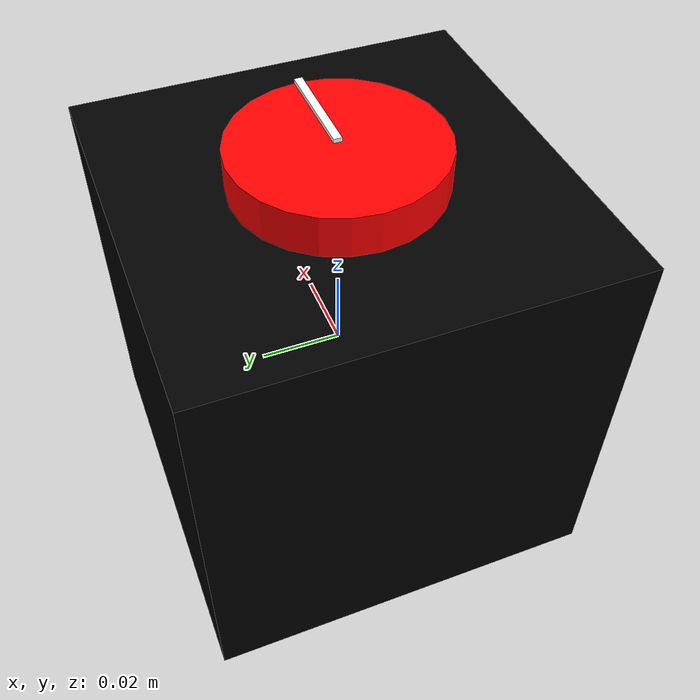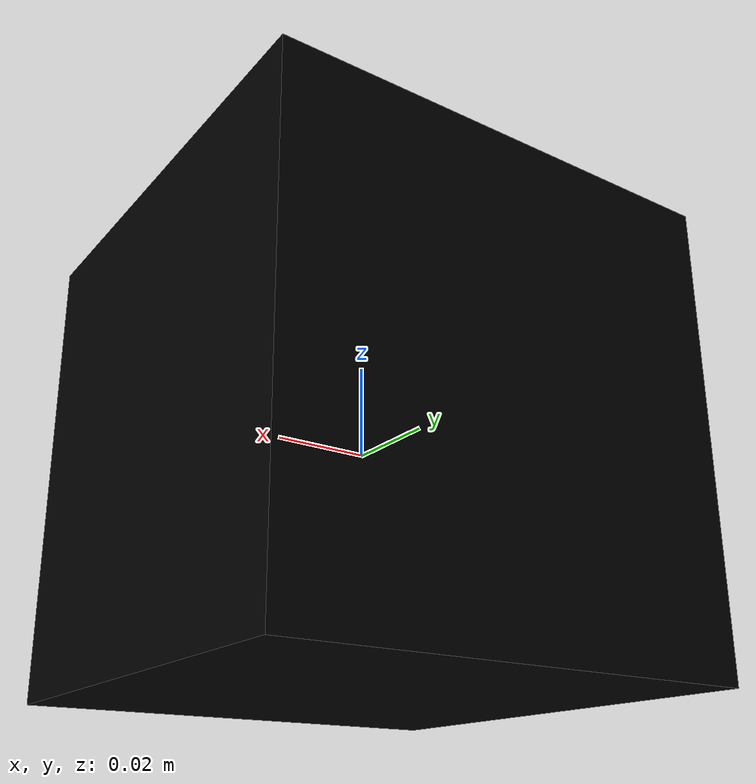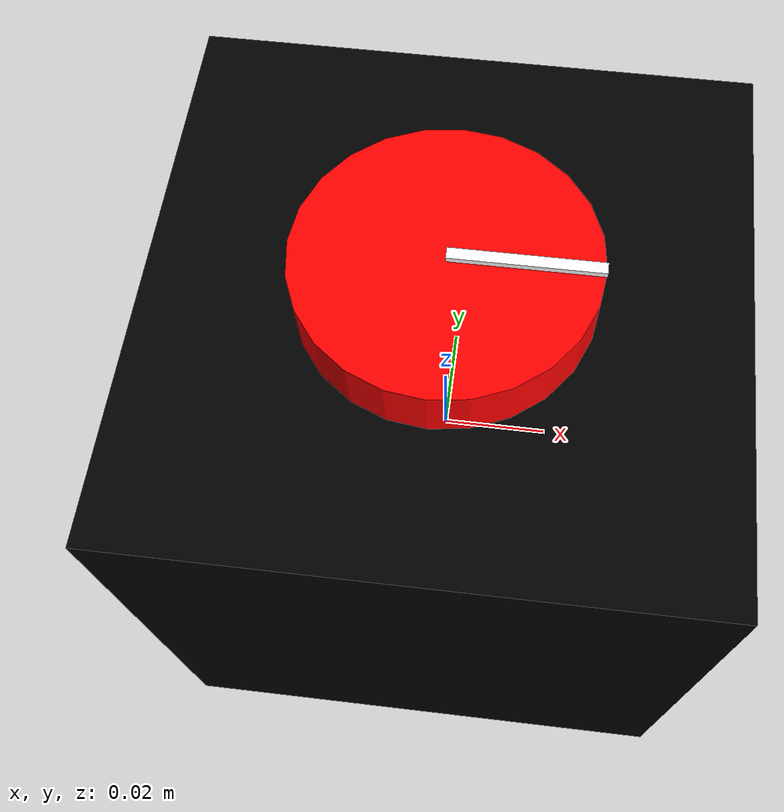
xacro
<?xml version="1.0"?>
<robot name="controlled_qube" xmlns:xacro="http://www.ros.org/wiki/xacro">

  <!-- Arguments -->
  <xacro:arg name="baud_rate" default="115200"/>
  <xacro:arg name="device" default="/dev/ttyACM0"/>
  <xacro:arg name="simulation" default="true"/>

  <!-- Include base Qube URDF -->
  <xacro:include filename="$(find qube_description)/urdf/qube.urdf.xacro"/>

  <!-- Include ROS2 Control interface -->
  <xacro:include filename="$(find qube_driver)/ros2_control/qube_driver.ros2_control.xacro"/>

  <!-- Create Qube instance -->
  <!-- xacro:qube prefix=""/ -->

  <!-- Setup ROS2 Control -->
  <xacro:qube_driver_ros2_control
    name="qube_driver"
    prefix=""
    baud_rate="$(arg baud_rate)"
    device="$(arg device)"
    simulation="$(arg simulation)"/>

</robot>

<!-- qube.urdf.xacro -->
<robot name="qube" xmlns:xacro="http://www.ros.org/wiki/xacro">
  <xacro:include filename="$(find qube_description)/urdf/qube.macro.xacro"/>
  <xacro:qube/>
</robot>

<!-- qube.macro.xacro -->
<robot xmlns:xacro="http://www.ros.org/wiki/xacro">
  <xacro:macro name="qube">
  <!-- Parameters -->
    <xacro:property name="box_size" value="0.1" />
    <xacro:property name="disk_radius" value="0.025" />
    <xacro:property name="disk_height" value="0.01" />
    <xacro:property name="indicator_length" value="0.025" />
    <xacro:property name="indicator_width" value="0.002" />
    <xacro:property name="indicator_height" value="0.001" />

    <!-- Cube -->
    <link name="base_link">
      <visual>
        <geometry><box size="${box_size} ${box_size} ${box_size}"/></geometry>
        <material name="black"><color rgba="0 0 0 1"/></material>
      </visual>
    </link>

    <!-- Spinning disk -->
    <link name="spinning_disk">
      <visual name="disk">
        <geometry>
          <cylinder radius="${disk_radius}" length="${disk_height}"/>
        </geometry>
        <material name="red">
          <color rgba="1 0 0 1"/>
        </material>
      </visual>
    </link>

    <!-- Indicator -->
    <link name="disk_indicator">
      <visual>
        <geometry>
          <box size="${indicator_length} ${indicator_width} ${indicator_height}"/>
        </geometry>
        <material name="white">
          <color rgba="1 1 1 1"/>
        </material>
      </visual>
    </link>

    <!-- Motor joint -->
    <joint name="motor_joint" type="continuous">
      <parent link="base_link"/>
      <child link="spinning_disk"/>
      <origin xyz="0 0 ${box_size/2 + disk_height/2}" rpy="0 0 0"/>
      <axis xyz="0 0 -1"/>
    </joint>

    <!-- Disk joint-->
    <joint name="indicator_joint" type="fixed">
      <parent link="spinning_disk"/>
      <child link="disk_indicator"/>
      <origin xyz="${disk_radius - indicator_length/2} 0 ${disk_height/2 + indicator_height/2}" rpy="0 0 0"/>
    </joint>

  </xacro:macro>
</robot>
